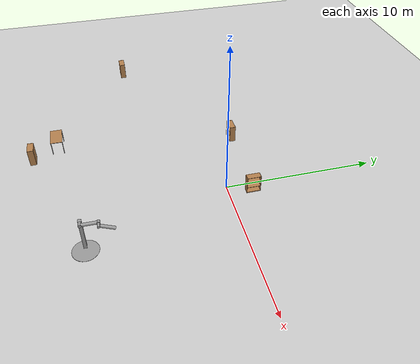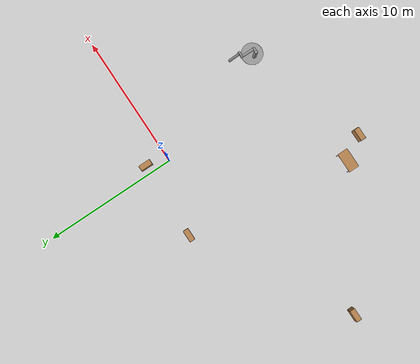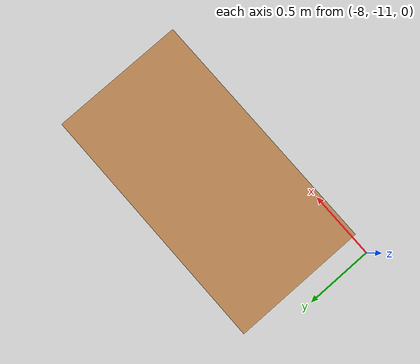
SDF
<sdf version="1.7">
 <world name="default">
  <model name="ground_plane">
   <static>1</static>
   <link name="link">
    <collision name="collision">
     <geometry><plane><normal>0 0 1</normal><size>1000 1000</size></plane></geometry>
     <surface>
      <contact><collide_bitmask>65535</collide_bitmask></contact>
      <friction><ode><mu>100</mu><mu2>50</mu2></ode></friction>
     </surface>
    </collision>
    <visual name="visual">
     <cast_shadows>0</cast_shadows>
     <geometry><plane><normal>0 0 1</normal><size>100 100</size></plane></geometry>
     <material>
      <script><uri>file://media/materials/scripts/gazebo.material</uri><name>Gazebo/Grey</name></script>
     </material>
    </visual>
   </link>
  </model>
  <model name="bookshelf">
   <static>1</static>
   <link name="link">
    <inertial><mass>1</mass></inertial>
    <visual name="visual1">
     <pose>0 0.005 0.6 0 -0 0</pose>
     <geometry><box><size>0.9 0.01 1.2</size></box></geometry>
     <material>
      <script><uri>file://media/materials/scripts/gazebo.material</uri><name>Gazebo/Wood</name></script>
     </material>
    </visual>
    <visual name="visual2">
     <pose>0.45 -0.195 0.6 0 -0 0</pose>
     <geometry><box><size>0.02 0.4 1.2</size></box></geometry>
     <material>
      <script><uri>file://media/materials/scripts/gazebo.material</uri><name>Gazebo/Wood</name></script>
     </material>
    </visual>
    <visual name="visual3">
     <pose>-0.45 -0.195 0.6 0 -0 0</pose>
     <geometry><box><size>0.02 0.4 1.2</size></box></geometry>
     <material>
      <script><uri>file://media/materials/scripts/gazebo.material</uri><name>Gazebo/Wood</name></script>
     </material>
    </visual>
    <visual name="visual4">
     <pose>0 -0.195 0.03 0 -0 0</pose>
     <geometry><box><size>0.88 0.4 0.06</size></box></geometry>
     <material>
      <script><uri>file://media/materials/scripts/gazebo.material</uri><name>Gazebo/Wood</name></script>
     </material>
    </visual>
    <visual name="visual5">
     <pose>0 -0.195 1.19 0 -0 0</pose>
     <geometry><box><size>0.88 0.4 0.02</size></box></geometry>
     <material>
      <script><uri>file://media/materials/scripts/gazebo.material</uri><name>Gazebo/Wood</name></script>
     </material>
    </visual>
    <visual name="visual6">
     <pose>0 -0.195 0.43 0 -0 0</pose>
     <geometry><box><size>0.88 0.4 0.02</size></box></geometry>
     <material>
      <script><uri>file://media/materials/scripts/gazebo.material</uri><name>Gazebo/Wood</name></script>
     </material>
    </visual>
    <visual name="visual7">
     <pose>0 -0.195 0.8 0 -0 0</pose>
     <geometry><box><size>0.88 0.4 0.02</size></box></geometry>
     <material>
      <script><uri>file://media/materials/scripts/gazebo.material</uri><name>Gazebo/Wood</name></script>
     </material>
    </visual>
   </link>
   <pose>0.43 1.58 0 0 -0 1.57611</pose>
  </model>
  <model name="bookshelf_0">
   <static>0</static>
   <link name="link">
    <inertial>
     <mass>1</mass>
     <inertia><ixx>1</ixx><ixy>0</ixy><ixz>0</ixz><iyy>1</iyy><iyz>0</iyz><izz>1</izz></inertia>
    </inertial>
    <collision name="back">
     <pose>0 0.005 0.6 0 -0 0</pose>
     <geometry><box><size>0.9 0.01 1.2</size></box></geometry>
    </collision>
    <visual name="visual1">
     <pose>0 0.005 0.6 0 -0 0</pose>
     <geometry><box><size>0.9 0.01 1.2</size></box></geometry>
     <material>
      <script><uri>file://media/materials/scripts/gazebo.material</uri><name>Gazebo/Wood</name></script>
     </material>
    </visual>
    <collision name="left_side">
     <pose>0.45 -0.195 0.6 0 -0 0</pose>
     <geometry><box><size>0.02 0.4 1.2</size></box></geometry>
    </collision>
    <visual name="visual2">
     <pose>0.45 -0.195 0.6 0 -0 0</pose>
     <geometry><box><size>0.02 0.4 1.2</size></box></geometry>
     <material>
      <script><uri>file://media/materials/scripts/gazebo.material</uri><name>Gazebo/Wood</name></script>
     </material>
    </visual>
    <collision name="right_side">
     <pose>-0.45 -0.195 0.6 0 -0 0</pose>
     <geometry><box><size>0.02 0.4 1.2</size></box></geometry>
    </collision>
    <visual name="visual3">
     <pose>-0.45 -0.195 0.6 0 -0 0</pose>
     <geometry><box><size>0.02 0.4 1.2</size></box></geometry>
     <material>
      <script><uri>file://media/materials/scripts/gazebo.material</uri><name>Gazebo/Wood</name></script>
     </material>
    </visual>
    <collision name="bottom">
     <pose>0 -0.195 0.03 0 -0 0</pose>
     <geometry><box><size>0.88 0.4 0.06</size></box></geometry>
    </collision>
    <visual name="visual4">
     <pose>0 -0.195 0.03 0 -0 0</pose>
     <geometry><box><size>0.88 0.4 0.06</size></box></geometry>
     <material>
      <script><uri>file://media/materials/scripts/gazebo.material</uri><name>Gazebo/Wood</name></script>
     </material>
    </visual>
    <collision name="top">
     <pose>0 -0.195 1.19 0 -0 0</pose>
     <geometry><box><size>0.88 0.4 0.02</size></box></geometry>
    </collision>
    <visual name="visual5">
     <pose>0 -0.195 1.19 0 -0 0</pose>
     <geometry><box><size>0.88 0.4 0.02</size></box></geometry>
     <material>
      <script><uri>file://media/materials/scripts/gazebo.material</uri><name>Gazebo/Wood</name></script>
     </material>
    </visual>
    <collision name="low_shelf">
     <pose>0 -0.195 0.43 0 -0 0</pose>
     <geometry><box><size>0.88 0.4 0.02</size></box></geometry>
    </collision>
    <visual name="visual6">
     <pose>0 -0.195 0.43 0 -0 0</pose>
     <geometry><box><size>0.88 0.4 0.02</size></box></geometry>
     <material>
      <script><uri>file://media/materials/scripts/gazebo.material</uri><name>Gazebo/Wood</name></script>
     </material>
    </visual>
    <collision name="high_shelf">
     <pose>0 -0.195 0.8 0 -0 0</pose>
     <geometry><box><size>0.88 0.4 0.02</size></box></geometry>
    </collision>
    <visual name="visual7">
     <pose>0 -0.195 0.8 0 -0 0</pose>
     <geometry><box><size>0.88 0.4 0.02</size></box></geometry>
     <material>
      <script><uri>file://media/materials/scripts/gazebo.material</uri><name>Gazebo/Wood</name></script>
     </material>
    </visual>
   </link>
   <pose>-5.16677 1.95844 -9e-06 0 -1e-06 0</pose>
  </model>
  <model name="bookshelf_16">
   <static>1</static>
   <link name="link">
    <inertial><mass>1</mass></inertial>
    <collision name="back">
     <pose>0 0.005 0.6 0 -0 0</pose>
     <geometry><box><size>0.9 0.01 1.2</size></box></geometry>
    </collision>
    <visual name="visual1">
     <pose>0 0.005 0.6 0 -0 0</pose>
     <geometry><box><size>0.9 0.01 1.2</size></box></geometry>
     <material>
      <script><uri>file://media/materials/scripts/gazebo.material</uri><name>Gazebo/Wood</name></script>
     </material>
    </visual>
    <collision name="left_side">
     <pose>0.45 -0.195 0.6 0 -0 0</pose>
     <geometry><box><size>0.02 0.4 1.2</size></box></geometry>
    </collision>
    <visual name="visual2">
     <pose>0.45 -0.195 0.6 0 -0 0</pose>
     <geometry><box><size>0.02 0.4 1.2</size></box></geometry>
     <material>
      <script><uri>file://media/materials/scripts/gazebo.material</uri><name>Gazebo/Wood</name></script>
     </material>
    </visual>
    <collision name="right_side">
     <pose>-0.45 -0.195 0.6 0 -0 0</pose>
     <geometry><box><size>0.02 0.4 1.2</size></box></geometry>
    </collision>
    <visual name="visual3">
     <pose>-0.45 -0.195 0.6 0 -0 0</pose>
     <geometry><box><size>0.02 0.4 1.2</size></box></geometry>
     <material>
      <script><uri>file://media/materials/scripts/gazebo.material</uri><name>Gazebo/Wood</name></script>
     </material>
    </visual>
    <collision name="bottom">
     <pose>0 -0.195 0.03 0 -0 0</pose>
     <geometry><box><size>0.88 0.4 0.06</size></box></geometry>
    </collision>
    <visual name="visual4">
     <pose>0 -0.195 0.03 0 -0 0</pose>
     <geometry><box><size>0.88 0.4 0.06</size></box></geometry>
     <material>
      <script><uri>file://media/materials/scripts/gazebo.material</uri><name>Gazebo/Wood</name></script>
     </material>
    </visual>
    <collision name="top">
     <pose>0 -0.195 1.19 0 -0 0</pose>
     <geometry><box><size>0.88 0.4 0.02</size></box></geometry>
    </collision>
    <visual name="visual5">
     <pose>0 -0.195 1.19 0 -0 0</pose>
     <geometry><box><size>0.88 0.4 0.02</size></box></geometry>
     <material>
      <script><uri>file://media/materials/scripts/gazebo.material</uri><name>Gazebo/Wood</name></script>
     </material>
    </visual>
    <collision name="low_shelf">
     <pose>0 -0.195 0.43 0 -0 0</pose>
     <geometry><box><size>0.88 0.4 0.02</size></box></geometry>
    </collision>
    <visual name="visual6">
     <pose>0 -0.195 0.43 0 -0 0</pose>
     <geometry><box><size>0.88 0.4 0.02</size></box></geometry>
     <material>
      <script><uri>file://media/materials/scripts/gazebo.material</uri><name>Gazebo/Wood</name></script>
     </material>
    </visual>
    <collision name="high_shelf">
     <pose>0 -0.195 0.8 0 -0 0</pose>
     <geometry><box><size>0.88 0.4 0.02</size></box></geometry>
    </collision>
    <visual name="visual7">
     <pose>0 -0.195 0.8 0 -0 0</pose>
     <geometry><box><size>0.88 0.4 0.02</size></box></geometry>
     <material>
      <script><uri>file://media/materials/scripts/gazebo.material</uri><name>Gazebo/Wood</name></script>
     </material>
    </visual>
   </link>
   <pose>-16.2598 -4.62783 0 0 -0 0</pose>
  </model>
  <model name="table_6">
   <static>1</static>
   <link name="link">
    <collision name="surface">
     <pose>0 0 1 0 -0 0</pose>
     <geometry><box><size>1.5 0.8 0.03</size></box></geometry>
     <surface><friction><ode><mu>0.6</mu><mu2>0.6</mu2></ode></friction></surface>
    </collision>
    <visual name="visual1">
     <pose>0 0 1 0 -0 0</pose>
     <geometry><box><size>1.5 0.8 0.03</size></box></geometry>
     <material>
      <script><uri>file://media/materials/scripts/gazebo.material</uri><name>Gazebo/Wood</name></script>
     </material>
    </visual>
    <collision name="front_left_leg">
     <pose>0.68 0.38 0.5 0 -0 0</pose>
     <geometry><cylinder><radius>0.02</radius><length>1</length></cylinder></geometry>
    </collision>
    <visual name="front_left_leg">
     <pose>0.68 0.38 0.5 0 -0 0</pose>
     <geometry><cylinder><radius>0.02</radius><length>1</length></cylinder></geometry>
     <material>
      <script><uri>file://media/materials/scripts/gazebo.material</uri><name>Gazebo/Grey</name></script>
     </material>
    </visual>
    <collision name="front_right_leg">
     <pose>0.68 -0.38 0.5 0 -0 0</pose>
     <geometry><cylinder><radius>0.02</radius><length>1</length></cylinder></geometry>
    </collision>
    <visual name="front_right_leg">
     <pose>0.68 -0.38 0.5 0 -0 0</pose>
     <geometry><cylinder><radius>0.02</radius><length>1</length></cylinder></geometry>
     <material>
      <script><uri>file://media/materials/scripts/gazebo.material</uri><name>Gazebo/Grey</name></script>
     </material>
    </visual>
    <collision name="back_right_leg">
     <pose>-0.68 -0.38 0.5 0 -0 0</pose>
     <geometry><cylinder><radius>0.02</radius><length>1</length></cylinder></geometry>
    </collision>
    <visual name="back_right_leg">
     <pose>-0.68 -0.38 0.5 0 -0 0</pose>
     <geometry><cylinder><radius>0.02</radius><length>1</length></cylinder></geometry>
     <material>
      <script><uri>file://media/materials/scripts/gazebo.material</uri><name>Gazebo/Grey</name></script>
     </material>
    </visual>
    <collision name="back_left_leg">
     <pose>-0.68 0.38 0.5 0 -0 0</pose>
     <geometry><cylinder><radius>0.02</radius><length>1</length></cylinder></geometry>
    </collision>
    <visual name="back_left_leg">
     <pose>-0.68 0.38 0.5 0 -0 0</pose>
     <geometry><cylinder><radius>0.02</radius><length>1</length></cylinder></geometry>
     <material>
      <script><uri>file://media/materials/scripts/gazebo.material</uri><name>Gazebo/Grey</name></script>
     </material>
    </visual>
   </link>
   <pose>-7.0092 -10.4852 0 0 -0 0</pose>
  </model>
  <model name="bookshelf_17">
   <static>1</static>
   <link name="link">
    <inertial><mass>1</mass></inertial>
    <collision name="back">
     <pose>0 0.005 0.6 0 -0 0</pose>
     <geometry><box><size>0.9 0.01 1.2</size></box></geometry>
    </collision>
    <visual name="visual1">
     <pose>0 0.005 0.6 0 -0 0</pose>
     <geometry><box><size>0.9 0.01 1.2</size></box></geometry>
     <material>
      <script><uri>file://media/materials/scripts/gazebo.material</uri><name>Gazebo/Wood</name></script>
     </material>
    </visual>
    <collision name="left_side">
     <pose>0.45 -0.195 0.6 0 -0 0</pose>
     <geometry><box><size>0.02 0.4 1.2</size></box></geometry>
    </collision>
    <visual name="visual2">
     <pose>0.45 -0.195 0.6 0 -0 0</pose>
     <geometry><box><size>0.02 0.4 1.2</size></box></geometry>
     <material>
      <script><uri>file://media/materials/scripts/gazebo.material</uri><name>Gazebo/Wood</name></script>
     </material>
    </visual>
    <collision name="right_side">
     <pose>-0.45 -0.195 0.6 0 -0 0</pose>
     <geometry><box><size>0.02 0.4 1.2</size></box></geometry>
    </collision>
    <visual name="visual3">
     <pose>-0.45 -0.195 0.6 0 -0 0</pose>
     <geometry><box><size>0.02 0.4 1.2</size></box></geometry>
     <material>
      <script><uri>file://media/materials/scripts/gazebo.material</uri><name>Gazebo/Wood</name></script>
     </material>
    </visual>
    <collision name="bottom">
     <pose>0 -0.195 0.03 0 -0 0</pose>
     <geometry><box><size>0.88 0.4 0.06</size></box></geometry>
    </collision>
    <visual name="visual4">
     <pose>0 -0.195 0.03 0 -0 0</pose>
     <geometry><box><size>0.88 0.4 0.06</size></box></geometry>
     <material>
      <script><uri>file://media/materials/scripts/gazebo.material</uri><name>Gazebo/Wood</name></script>
     </material>
    </visual>
    <collision name="top">
     <pose>0 -0.195 1.19 0 -0 0</pose>
     <geometry><box><size>0.88 0.4 0.02</size></box></geometry>
    </collision>
    <visual name="visual5">
     <pose>0 -0.195 1.19 0 -0 0</pose>
     <geometry><box><size>0.88 0.4 0.02</size></box></geometry>
     <material>
      <script><uri>file://media/materials/scripts/gazebo.material</uri><name>Gazebo/Wood</name></script>
     </material>
    </visual>
    <collision name="low_shelf">
     <pose>0 -0.195 0.43 0 -0 0</pose>
     <geometry><box><size>0.88 0.4 0.02</size></box></geometry>
    </collision>
    <visual name="visual6">
     <pose>0 -0.195 0.43 0 -0 0</pose>
     <geometry><box><size>0.88 0.4 0.02</size></box></geometry>
     <material>
      <script><uri>file://media/materials/scripts/gazebo.material</uri><name>Gazebo/Wood</name></script>
     </material>
    </visual>
    <collision name="high_shelf">
     <pose>0 -0.195 0.8 0 -0 0</pose>
     <geometry><box><size>0.88 0.4 0.02</size></box></geometry>
    </collision>
    <visual name="visual7">
     <pose>0 -0.195 0.8 0 -0 0</pose>
     <geometry><box><size>0.88 0.4 0.02</size></box></geometry>
     <material>
      <script><uri>file://media/materials/scripts/gazebo.material</uri><name>Gazebo/Wood</name></script>
     </material>
    </visual>
   </link>
   <pose>-5.92053 -11.9964 0 0 -0 0</pose>
  </model>
  <model name="double_pendulum_with_base">
   <link name="base">
    <inertial>
     <mass>100</mass>
     <inertia><ixx>1</ixx><ixy>0</ixy><ixz>0</ixz><iyy>1</iyy><iyz>0</iyz><izz>1</izz></inertia>
    </inertial>
    <visual name="vis_plate_on_ground">
     <pose>0 0 0.01 0 -0 0</pose>
     <geometry><cylinder><radius>0.8</radius><length>0.02</length></cylinder></geometry>
     <material>
      <script><uri>file://media/materials/scripts/gazebo.material</uri><name>Gazebo/Grey</name></script>
     </material>
    </visual>
    <visual name="vis_pole">
     <pose>-0.275 0 1.1 0 -0 0</pose>
     <geometry><box><size>0.2 0.2 2.2</size></box></geometry>
     <material>
      <script><uri>file://media/materials/scripts/gazebo.material</uri><name>Gazebo/Grey</name></script>
     </material>
    </visual>
    <collision name="col_plate_on_ground">
     <pose>0 0 0.01 0 -0 0</pose>
     <geometry><cylinder><radius>0.8</radius><length>0.02</length></cylinder></geometry>
    </collision>
    <collision name="col_pole">
     <pose>-0.275 0 1.1 0 -0 0</pose>
     <geometry><box><size>0.2 0.2 2.2</size></box></geometry>
    </collision>
   </link>
   <link name="upper_link">
    <pose>0 0 2.1 -1.5708 0 0</pose>
    <inertial>
     <pose>0 0 0.5 0 -0 0</pose>
     <inertia><ixx>1</ixx><ixy>0</ixy><ixz>0</ixz><iyy>1</iyy><iyz>0</iyz><izz>1</izz></inertia>
     <mass>1</mass>
    </inertial>
    <visual name="vis_upper_joint">
     <pose>-0.05 0 0 3.14159 1.57079 3.14159</pose>
     <geometry><cylinder><radius>0.1</radius><length>0.3</length></cylinder></geometry>
     <material>
      <script><uri>file://media/materials/scripts/gazebo.material</uri><name>Gazebo/Grey</name></script>
     </material>
    </visual>
    <visual name="vis_lower_joint">
     <pose>0 0 1 3.14159 1.57079 3.14159</pose>
     <geometry><cylinder><radius>0.1</radius><length>0.2</length></cylinder></geometry>
     <material>
      <script><uri>file://media/materials/scripts/gazebo.material</uri><name>Gazebo/Grey</name></script>
     </material>
    </visual>
    <visual name="vis_cylinder">
     <pose>0 0 0.5 0 -0 0</pose>
     <geometry><cylinder><radius>0.1</radius><length>0.9</length></cylinder></geometry>
     <material>
      <script><uri>file://media/materials/scripts/gazebo.material</uri><name>Gazebo/Grey</name></script>
     </material>
    </visual>
    <collision name="col_upper_joint">
     <pose>-0.05 0 0 3.14159 1.57079 3.14159</pose>
     <geometry><cylinder><radius>0.1</radius><length>0.3</length></cylinder></geometry>
    </collision>
    <collision name="col_lower_joint">
     <pose>0 0 1 3.14159 1.57079 3.14159</pose>
     <geometry><cylinder><radius>0.1</radius><length>0.2</length></cylinder></geometry>
    </collision>
    <collision name="col_cylinder">
     <pose>0 0 0.5 0 -0 0</pose>
     <geometry><cylinder><radius>0.1</radius><length>0.9</length></cylinder></geometry>
    </collision>
   </link>
   <link name="lower_link">
    <pose>0.25 1 2.1 -2 0 0</pose>
    <inertial>
     <pose>0 0 0.5 0 -0 0</pose>
     <inertia><ixx>1</ixx><ixy>0</ixy><ixz>0</ixz><iyy>1</iyy><iyz>0</iyz><izz>1</izz></inertia>
     <mass>1</mass>
    </inertial>
    <visual name="vis_lower_joint">
     <pose>0 0 0 3.14159 1.57079 3.14159</pose>
     <geometry><cylinder><radius>0.08</radius><length>0.3</length></cylinder></geometry>
     <material>
      <script><uri>file://media/materials/scripts/gazebo.material</uri><name>Gazebo/Grey</name></script>
     </material>
    </visual>
    <visual name="vis_cylinder">
     <pose>0 0 0.5 0 -0 0</pose>
     <geometry><cylinder><radius>0.1</radius><length>0.9</length></cylinder></geometry>
     <material>
      <script><uri>file://media/materials/scripts/gazebo.material</uri><name>Gazebo/Grey</name></script>
     </material>
    </visual>
    <collision name="col_lower_joint">
     <pose>0 0 0 3.14159 1.57079 3.14159</pose>
     <geometry><cylinder><radius>0.08</radius><length>0.3</length></cylinder></geometry>
    </collision>
    <collision name="col_cylinder">
     <pose>0 0 0.5 0 -0 0</pose>
     <geometry><cylinder><radius>0.1</radius><length>0.9</length></cylinder></geometry>
    </collision>
   </link>
   <joint name="upper_joint" type="revolute">
    <parent>base</parent>
    <child>upper_link</child>
    <axis>
     <xyz>1 0 0</xyz>
     <limit><lower>-1e+16</lower><upper>1e+16</upper></limit>
     <dynamics><spring_reference>0</spring_reference><spring_stiffness>0</spring_stiffness></dynamics>
    </axis>
   </joint>
   <joint name="lower_joint" type="revolute">
    <parent>upper_link</parent>
    <child>lower_link</child>
    <axis>
     <xyz>1 0 0</xyz>
     <limit><lower>-1e+16</lower><upper>1e+16</upper></limit>
     <dynamics><spring_reference>0</spring_reference><spring_stiffness>0</spring_stiffness></dynamics>
    </axis>
   </joint>
   <pose>3.12621 -9.19663 -1e-06 -2e-06 7e-06 -0.017705</pose>
  </model>
 </world>
</sdf>
